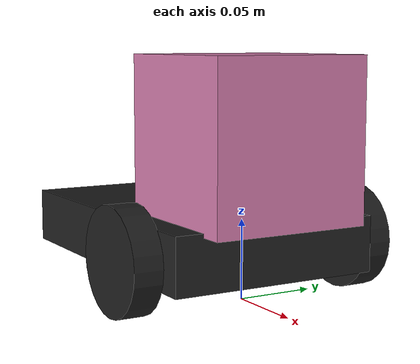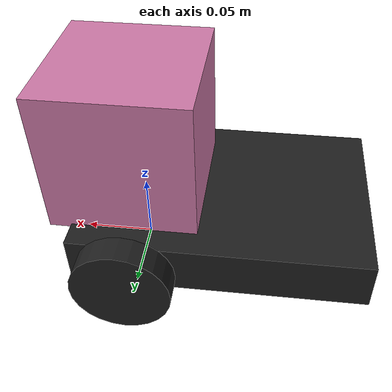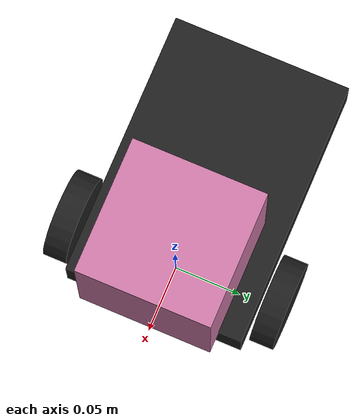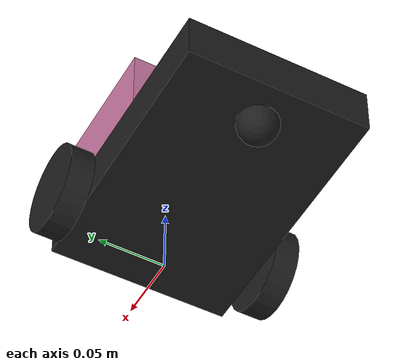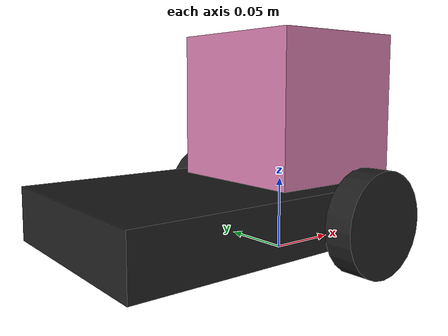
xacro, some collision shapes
<?xml version="1.0" ?>
<robot name="newbot" xmlns:xacro="http://ros.org/wiki/xacro">
  <xacro:include filename="$(find newbot_description)/urdf/common_properties.xacro"/>
  <xacro:include filename="$(find newbot_description)/urdf/newbot.gazebo.xacro"/>

  <link name="base_footprint"/>

  <joint name="base_joint" type="fixed">
    <parent link="base_footprint"/>
    <child link="base_link"/>
    <origin xyz="0.0 0.0 0.010" rpy="0 0 0"/>
  </joint>

  <link name="base_link">
    <visual>
      <origin xyz="-0.06 0 0.025" rpy="0 0 0"/>
       <geometry>
        <box size="0.2 0.135 0.035"/>
      </geometry>
      <material name="light_black"/>
    </visual>

    <collision>
      <origin xyz="-0.06 0 0.025" rpy="0 0 0"/>
       <geometry>
        <box size="0.2 0.135 0.035"/>
      </geometry>
    </collision>

    <visual>
      <origin xyz="0.005 0 0.05" rpy=" 0 0 0"/>
      <geometry>
        <box size="0.07 0.09 0.015"/>
      </geometry>
      <material name="light_black"/>
    </visual>

    <collision>
      <origin xyz="0.005 0 0.05" rpy=" 0 0 0"/>
      <geometry>
        <box size="0.07 0.09 0.015"/>
      </geometry>
    </collision>

    <inertial>
      <origin xyz="0 0 0" rpy="0 0 0"/>
      <mass value="8.2573504e-01"/>
      <inertia ixx="2.2124416e-03" ixy="-1.2294101e-05" ixz="3.4938785e-05"
               iyy="2.1193702e-03" iyz="-5.0120904e-06"
               izz="2.0064271e-03" />
    </inertial>
  </link>

  <joint name="wheel_left_joint" type="continuous">
    <parent link="base_link"/>
    <child link="wheel_left_link"/>
    <origin xyz="0.0 0.08 0.023" rpy="-1.57 0 0"/>
    <axis xyz="0 0 1"/>
  </joint>

  <link name="wheel_left_link">
    <visual>
      <origin xyz="0 0 0" rpy="0 0 0"/>
      <geometry>
        <cylinder length="0.018" radius="0.033"/>
      </geometry>
      <material name="dark"/>
    </visual>

    <collision>
      <origin xyz="0 0 0" rpy="0 0 0"/>
      <geometry>
        <cylinder length="0.018" radius="0.033"/>
      </geometry>
    </collision>

    <inertial>
      <origin xyz="0 0 0" />
      <mass value="2.8498940e-02" />
      <inertia ixx="1.1175580e-05" ixy="-4.2369783e-11" ixz="-5.9381719e-09"
               iyy="1.1192413e-05" iyz="-1.4400107e-11"
               izz="2.0712558e-05" />
      </inertial>
  </link>

  <joint name="wheel_right_joint" type="continuous">
    <parent link="base_link"/>
    <child link="wheel_right_link"/>
    <origin xyz="0.0 -0.080 0.023" rpy="-1.57 0 0"/>
    <axis xyz="0 0 1"/>
  </joint>

  <link name="wheel_right_link">
    <visual>
      <origin xyz="0 0 0" rpy="0 0 0"/>
      <geometry>
        <cylinder length="0.018" radius="0.033"/>
      </geometry>
      <material name="dark"/>
    </visual>

    <collision>
      <origin xyz="0 0 0" rpy="0 0 0"/>
      <geometry>
        <cylinder length="0.018" radius="0.033"/>
      </geometry>
    </collision>

    <inertial>
      <origin xyz="0 0 0" />
      <mass value="2.8498940e-02" />
      <inertia ixx="1.1175580e-05" ixy="-4.2369783e-11" ixz="-5.9381719e-09"
               iyy="1.1192413e-05" iyz="-1.4400107e-11"
               izz="2.0712558e-05" />
      </inertial>
  </link>

  <joint name="caster_back_joint" type="fixed">
    <parent link="base_link"/>
    <child link="caster_back_link"/>
    <origin xyz="0 0 0" rpy="0 0 0"/>
  </joint>

  <link name="caster_back_link">
    <visual>
      <origin xyz="-0.13 0 0.005" rpy="0 0 0"/>
      <geometry>
        <sphere radius="0.015"/>
      </geometry>
    </visual>

    <collision>
      <origin xyz="-0.13 0 0.005" rpy="0 0 0"/>
      <geometry>
        <sphere radius="0.015"/>
      </geometry>
      <surface>
        <friction>
          <ode>
            <mu>0</mu>
            <mu2>0</mu2>
            <slip1>1.0</slip1>
            <slip2>1.0</slip2>
          </ode>
        </friction>
      </surface>
    </collision>

    <inertial>
      <origin xyz="0 0 0" />
      <mass value="0.005" />
      <inertia ixx="0.001" ixy="0.0" ixz="0.0"
               iyy="0.001" iyz="0.0"
               izz="0.001" />
    </inertial>
  </link>

  <joint name="imu_joint" type="fixed">
    <parent link="base_link"/>
    <child link="imu_link"/>
    <origin xyz="-0.032 0 0.068" rpy="0 0 0"/>
  </joint>

  <link name="imu_link"/>

  <joint name="scan_joint" type="fixed">
    <parent link="base_link"/>
    <child link="base_scan"/>
    <origin xyz="0.005 0 0.09" rpy="0 0 0"/>
  </joint>

  <link name="base_scan">
    <collision>
      <origin xyz="0 0 0" rpy="0 0 1.57"/>
      <geometry>
    	<box size="0.1 0.1 0.1"/>
      </geometry>
    </collision>

    <visual>
      <origin xyz="0 0 0" rpy="0 0 1.57"/>
      <geometry>
        <mesh filename="package://newbot_description/meshes/kinect.dae"/>
      </geometry>
    </visual>

    <inertial>
      <mass value="1e-5" />
      <origin xyz="0 0 0" rpy="0 0 0"/>
      <inertia ixx="1e-6" ixy="0" ixz="0" iyy="1e-6" iyz="0" izz="1e-6" />
    </inertial>
  </link>

</robot>
